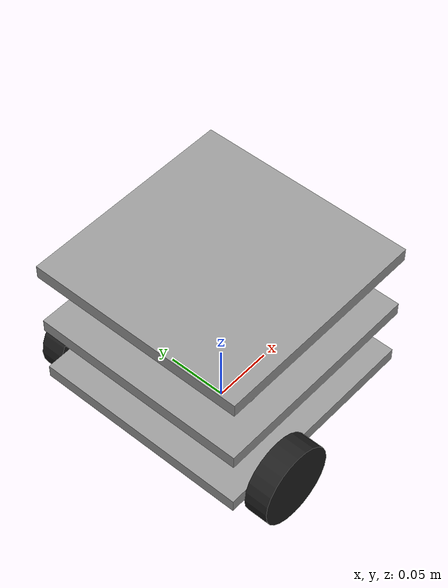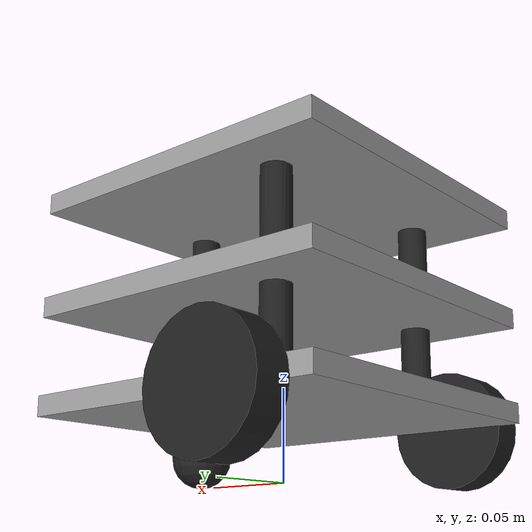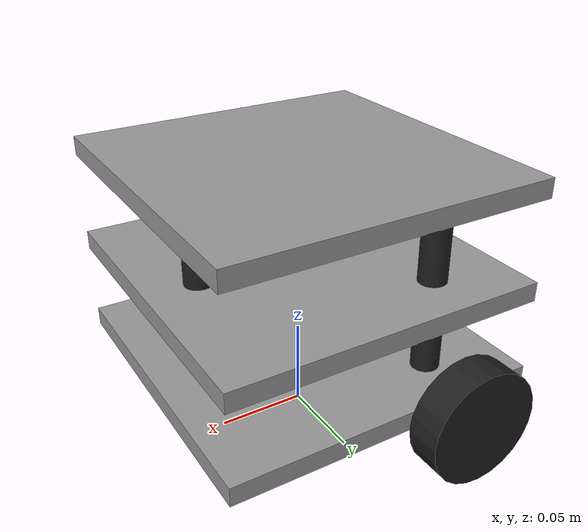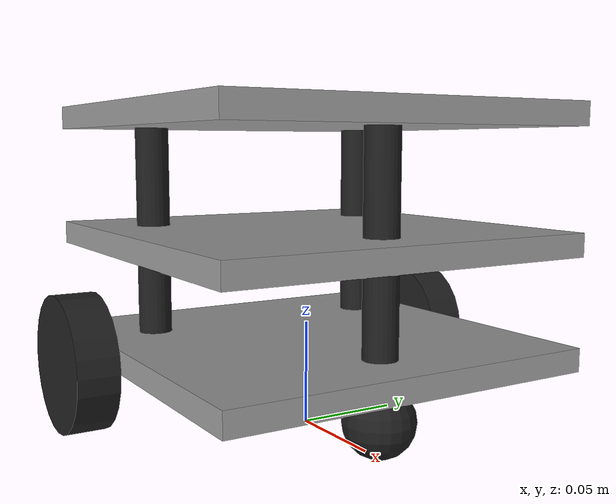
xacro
<?xml version="1.0"?>
<robot  xmlns:xacro="http://www.ros.org/wiki/xacro">

        <xacro:property name="base_length" value="0.18"/>
        <xacro:property name="base_width" value="0.18"/>
        <xacro:property name="base_height" value="0.011"/>
        <xacro:property name="base_mass" value="1.2"/>
        <xacro:property name="floor1_length" value="0.18"/>
        <xacro:property name="floor1_width" value="0.18"/>
        <xacro:property name="floor1_height" value="0.011"/>
        <xacro:property name="floor1_mass" value="0.4"/>
        <xacro:property name="floor2_length" value="0.18"/>
        <xacro:property name="floor2_width" value="0.18"/>
        <xacro:property name="floor2_height" value="0.011"/>
        <xacro:property name="floor2_mass" value="0.3"/>
        <xacro:property name="floor3_length" value="0.18"/>
        <xacro:property name="floor3_width" value="0.18"/>
        <xacro:property name="floor3_height" value="0.011"/>
        <xacro:property name="floor3_mass" value="0.2"/>
        <xacro:property name="wheel_radius" value="0.033"/>
        <xacro:property name="wheel_length" value="0.02"/>
        <xacro:property name="wheel_mass" value="0.15"/>
        <xacro:property name="caster_wheel_radius" value="0.01"/>
        <xacro:property name="caster_wheel_mass" value="0.05"/>

        <link name="base_link">
            <visual>
                <geometry>
                    <box size="${base_length} ${base_width} ${base_height}"/>
                </geometry>
                <origin xyz="0 0 ${base_height/2}" rpy="0 0 0"/>
                <material name="grey"/>
            </visual>
            <collision>
                <geometry>
                    <box size="${base_length} ${base_width} ${base_height}"/>
                </geometry>
                <origin xyz="0 0 ${base_height/2}" rpy="0 0 0"/>
            </collision>
            <xacro:box_inertia mass="${base_mass}" length="${2*base_length}" width="${2*base_width}" height="${2*base_height}" xyz="0 0 0" rpy="0 0 0"/>
        </link>

        <link name="base_footprint"/>

        <link name="floor1_link">
            <visual>
                <geometry>
                    <box size="${floor1_length} ${floor1_width} ${floor1_height}"/>
                </geometry>
                <origin xyz="0 0 0" rpy="0 0 0"/>
                <material name="grey"/>
            </visual>
            <collision>
                <geometry>
                    <box size="${floor1_length} ${floor1_width} ${floor1_height}"/>
                </geometry>
                <origin xyz="0 0 0" rpy="0 0 0"/>
            </collision>
            <xacro:box_inertia mass="${floor1_mass}" length="${2*floor1_length}" width="${2*floor1_width}" height="${2*floor1_height}" xyz="0 0 -${floor1_height/2}" rpy="0 0 0"/>
        </link>

        <link name="floor2_link">
            <visual>
                <geometry>
                    <box size="${floor2_length} ${floor2_width} ${floor2_height}"/>
                </geometry>
                <origin xyz="0 0 0" rpy="0 0 0"/>
                <material name="grey"/>
            </visual>
            <collision>
                <geometry>
                    <box size="${floor2_length} ${floor2_width} ${floor2_height}"/>
                </geometry>
                <origin xyz="0 0 0" rpy="0 0 0"/>
            </collision>
            <xacro:box_inertia mass="${floor2_mass}" length="${2*floor2_length}" width="${2*floor2_width}" height="${2*floor2_height}" xyz="0 0 -${floor2_height/2}" rpy="0 0 0"/>
        </link>
        <link name="right_wheel_link">
            <visual>
                <geometry>
                    <cylinder length="${wheel_length}" radius="${wheel_radius}"/>
                </geometry>
                <origin xyz="0 0 0" rpy="${pi/2} 0 0"/>
                <material name="black"/>
            </visual>
            <collision>
                <geometry>
                    <cylinder length="${wheel_length}" radius="${wheel_radius}"/>
                </geometry>
                <origin xyz="0 0 0" rpy="${pi/2} 0 0"/>
            </collision>
            <xacro:cylinder_inertia m="${wheel_mass}" l="${2*wheel_length}" r="${2*wheel_radius}" xyz="0 0 0" rpy="${pi/2} 0 0"/>
        </link>

        <link name="left_wheel_link">
            <visual>
                <geometry>
                    <cylinder length="${wheel_length}" radius="${wheel_radius}"/>
                </geometry>
                <origin xyz="0 0 0" rpy="${pi/2} 0 0"/>
                <material name="black"/>
            </visual>
            <collision>
                <geometry>
                    <cylinder length="${wheel_length}" radius="${wheel_radius}"/>
                </geometry>
                <origin xyz="0 0 0" rpy="${pi/2} 0 0"/>
            </collision>
            <xacro:cylinder_inertia m="${wheel_mass}" l="${2*wheel_length}" r="${2*wheel_radius}" xyz="0 0 0" rpy="${pi/2} 0 0"/>
        </link>

        <link name="caster_wheel_link">
            <visual>
                <geometry>
                    <sphere radius="${wheel_radius/2.0}"/>
                </geometry>
                <origin xyz="0 0 0" rpy="0 0 0"/>
                <material name="black"/>
            </visual>
            <collision>
                <geometry>
                    <sphere radius="${wheel_radius/2.0}"/>
                </geometry>
                <origin xyz="0 0 0" rpy="0 0 0"/>
            </collision>
            <xacro:sphere_inertia m="${caster_wheel_mass}" r="${2*wheel_radius/2.0}" xyz="0 0 0" rpy="0 0 0"/>
        </link>

        <xacro:macro name="standoff" params="prefix radius length mass xyz rpy">
            <link name="${prefix}_standoff_link">
                <visual>
                    <geometry>
                        <cylinder length="${length}" radius="${radius}"/>
                    </geometry>
                    <origin xyz="${xyz}" rpy="${rpy}"/>
                    <material name="black"/>
                </visual>
                <collision>
                    <geometry>
                        <cylinder length="${length}" radius="${radius}"/>
                    </geometry>
                    <origin xyz="${xyz}" rpy="${rpy}"/>
                </collision>
                <xacro:cylinder_inertia m="${mass}" l="${2*length}" r="${2*radius}" xyz="${xyz}" rpy="${rpy}"/>
            </link>
        </xacro:macro>
        <xacro:standoff prefix="right_wheel_1" radius="0.008" length="0.05" mass="0.002" xyz="0 0 0" rpy="0 0 0"/>
        <xacro:standoff prefix="left_wheel_1" radius="0.008" length="0.05" mass="0.002" xyz="0 0 0" rpy="0 0 0"/>
        <xacro:standoff prefix="caster_wheel_1" radius="0.008" length="0.05" mass="0.002" xyz="0 0 0" rpy="0 0 0"/>
        <xacro:standoff prefix="right_wheel_2" radius="0.008" length="0.05" mass="0.002" xyz="0 0 0" rpy="0 0 0"/>
        <xacro:standoff prefix="left_wheel_2" radius="0.008" length="0.05" mass="0.002" xyz="0 0 0" rpy="0 0 0"/>
        <xacro:standoff prefix="caster_wheel_2" radius="0.008" length="0.05" mass="0.002" xyz="0 0 0" rpy="0 0 0"/>
        <joint name="footprint_to_base" type="fixed">
            <parent link="base_footprint"/>
            <child link="base_link"/>
            <origin xyz="0 0 ${wheel_radius}" rpy="0 0 0"/>
        </joint>

        <joint name="base_to_right_wheel_1" type="fixed">
            <parent link="base_link"/>
            <child link="right_wheel_1_standoff_link"/>
            <origin xyz="${-base_length/4.0} ${-(base_width )/3.0} ${0.025 + base_height}" rpy="0 0 0"/>
        </joint>

        <joint name="base_to_left_wheel_1" type="fixed">
            <parent link="base_link"/>
            <child link="left_wheel_1_standoff_link"/>
            <origin xyz="${-base_length/4.0} ${(base_width )/3.0} ${0.025 + base_height}" rpy="0 0 0"/>
        </joint>

        <joint name="base_to_caster_wheel_1" type="fixed">
            <parent link="base_link"/>
            <child link="caster_wheel_1_standoff_link"/>
            <origin xyz="${base_length/3.0} 0 ${0.025 + base_height}" rpy="0 0 0"/>
        </joint>

        <joint name="floor1_to_right_wheel_2" type="fixed">
            <parent link="floor1_link"/>
            <child link="right_wheel_2_standoff_link"/>
            <origin xyz="${-base_length/4.0} ${-(base_width )/3.0} ${0.025 + base_height/2}" rpy="0 0 0"/>
        </joint>

        <joint name="floor1_to_left_wheel_2" type="fixed">
            <parent link="floor1_link"/>
            <child link="left_wheel_2_standoff_link"/>
            <origin xyz="${-base_length/4.0} ${(base_width )/3.0} ${0.025 + base_height/2}" rpy="0 0 0"/>
        </joint>

        <joint name="floor1_to_caster_wheel_2" type="fixed">
            <parent link="floor1_link"/>
            <child link="caster_wheel_2_standoff_link"/>
            <origin xyz="${base_length/3.0} 0 ${0.025 + base_height/2}" rpy="0 0 0"/>
        </joint>

        <joint name="base_to_right_wheel" type="continuous">
            <parent link="base_link"/>
            <child link="right_wheel_link"/>
            <origin xyz="${-base_length/4.0} ${-(base_width + wheel_length)/2.0} 0" rpy="0 0 0"/>
            <dynamics damping="1.0" friction="1.0"/>
            <axis xyz="0 1 0"/>
        </joint>

        <joint name="base_to_left_wheel" type="continuous">
            <parent link="base_link"/>
            <child link="left_wheel_link"/>
            <origin xyz="${-base_length/4.0} ${(base_width + wheel_length)/2.0} 0" rpy="0 0 0"/>
            <dynamics damping="1.0" friction="1.0"/>
            <axis xyz="0 1 0"/>
        </joint>

        <joint name="base_to_caster_wheel" type="fixed">
            <parent link="base_link"/>
            <child link="caster_wheel_link"/>
            <origin xyz="${base_length/3.0} 0 ${-wheel_radius/2}" rpy="0 0 0"/>
        </joint>

        <joint name="base_to_floor1" type="fixed">
            <parent link="base_link"/>
            <child link="floor1_link"/>
            <origin xyz="0 0 ${wheel_radius + 0.025}" rpy="0 0 0"/>
        </joint>

        <joint name="floor1_to_floor2" type="fixed">
            <parent link="floor1_link"/>
            <child link="floor2_link"/>
            <origin xyz="0 0 ${wheel_radius + 0.025}" rpy="0 0 0"/>
        </joint>

</robot>
